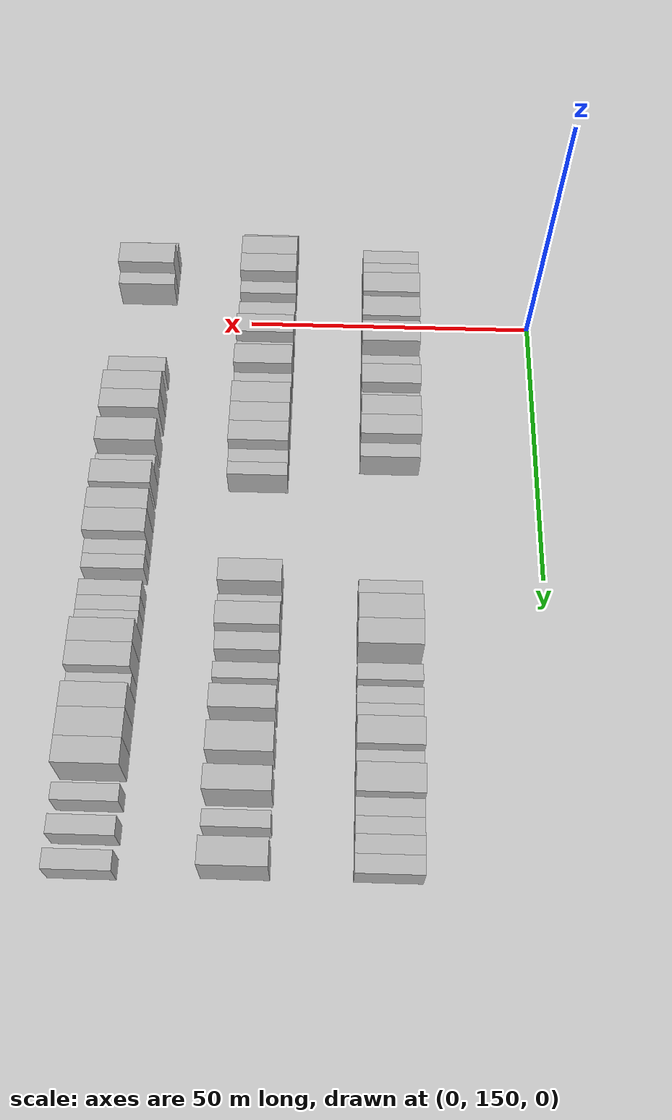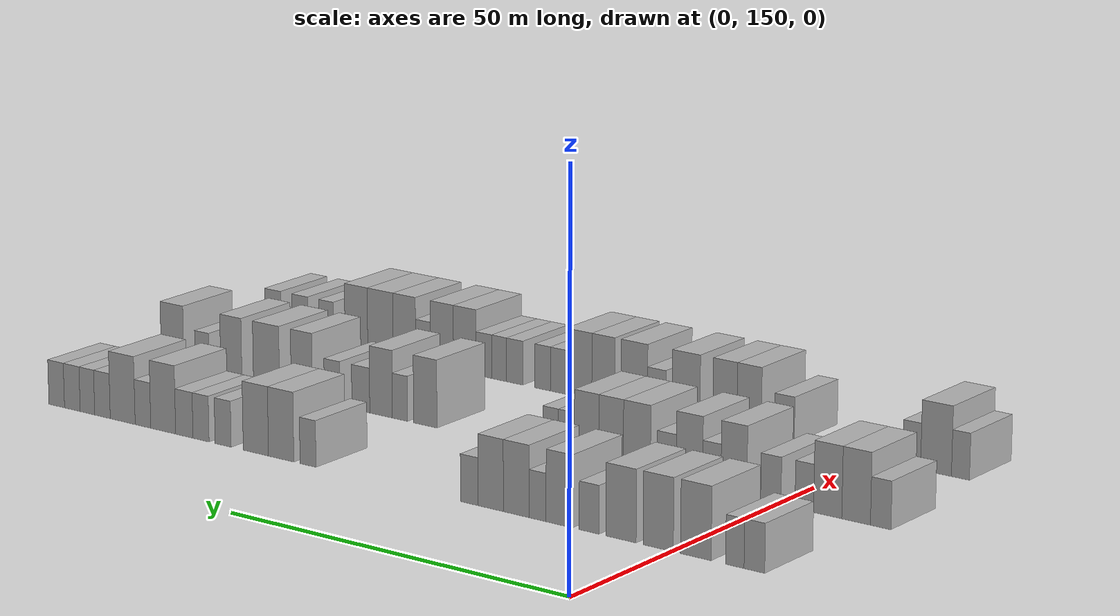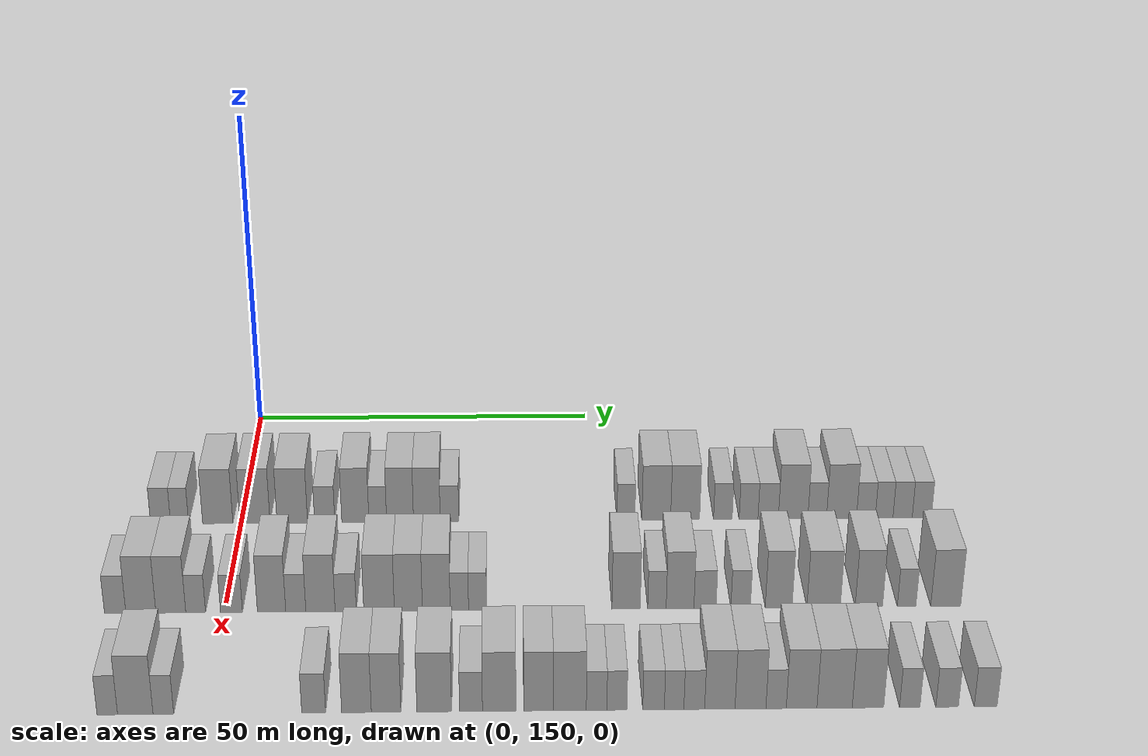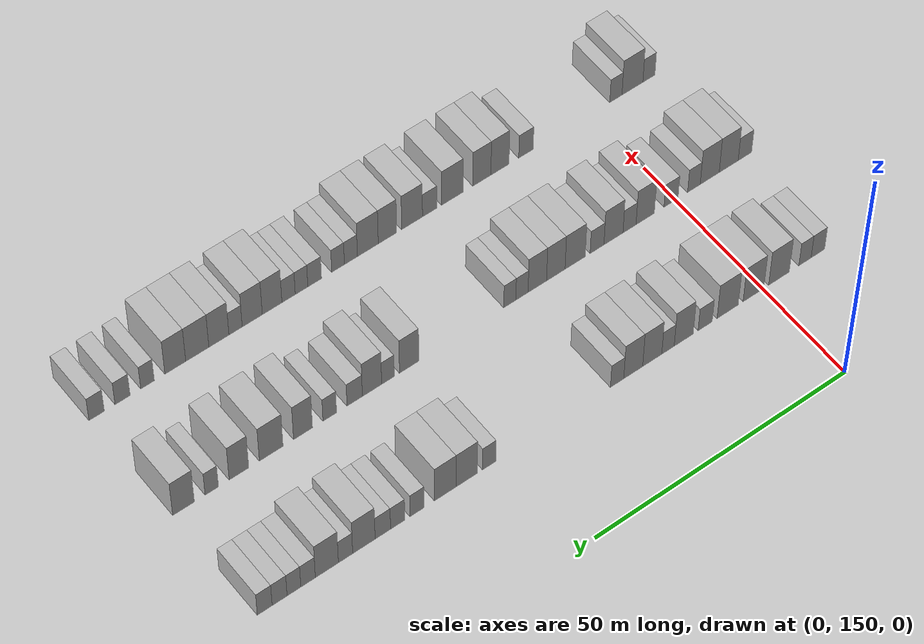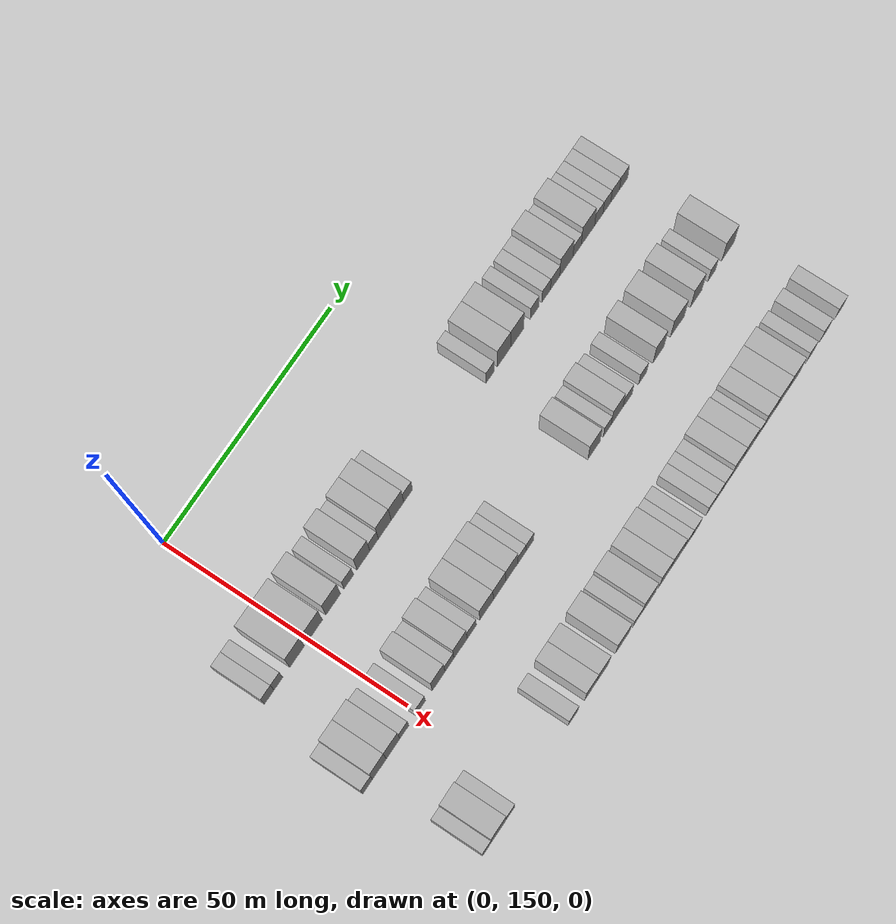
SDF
<sdf version="1.6">
 <world name="default">
  <model name="building_100">
   <static>1</static>
   <pose>25.0000 138.5593 0 0.000000 0.000000 0.000000</pose>
   <link name="link">
    <pose>0 0 3.00 0 0 0</pose>
    <collision name="collision"><geometry><box><size>10.0000 2.8324 6.0000</size></box></geometry></collision>
    <visual name="visual">
     <cast_shadows>0</cast_shadows>
     <geometry><box><size>10.0000 2.8324 6.0000</size></box></geometry>
     <material>
      <script>
       <uri>model://HANNAS_wall/materials/scripts</uri>
       <uri>model://HANNAS_wall/materials/textures</uri>
       <name>vrc/HANNAS_wall</name>
      </script>
     </material>
    </visual>
   </link>
  </model>
  <model name="building_101">
   <static>1</static>
   <pose>25.0000 141.2569 0 0.000000 0.000000 0.000000</pose>
   <link name="link">
    <pose>0 0 3.00 0 0 0</pose>
    <collision name="collision"><geometry><box><size>10.0000 2.5628 6.0000</size></box></geometry></collision>
    <visual name="visual">
     <cast_shadows>0</cast_shadows>
     <geometry><box><size>10.0000 2.5628 6.0000</size></box></geometry>
     <material>
      <script>
       <uri>model://HANNAS_wall/materials/scripts</uri>
       <uri>model://HANNAS_wall/materials/textures</uri>
       <name>vrc/HANNAS_wall</name>
      </script>
     </material>
    </visual>
   </link>
  </model>
  <model name="building_102">
   <static>1</static>
   <pose>25.0000 146.6880 0 0.000000 0.000000 0.000000</pose>
   <link name="link">
    <pose>0 0 4.50 0 0 0</pose>
    <collision name="collision"><geometry><box><size>10.0000 4.2995 9.0000</size></box></geometry></collision>
    <visual name="visual">
     <cast_shadows>0</cast_shadows>
     <geometry><box><size>10.0000 4.2995 9.0000</size></box></geometry>
     <material>
      <script>
       <uri>model://HANNAS_wall/materials/scripts</uri>
       <uri>model://HANNAS_wall/materials/textures</uri>
       <name>vrc/HANNAS_wall</name>
      </script>
     </material>
    </visual>
   </link>
  </model>
  <model name="building_103">
   <static>1</static>
   <pose>25.0000 151.9792 0 0.000000 0.000000 0.000000</pose>
   <link name="link">
    <pose>0 0 4.50 0 0 0</pose>
    <collision name="collision"><geometry><box><size>10.0000 4.2827 9.0000</size></box></geometry></collision>
    <visual name="visual">
     <cast_shadows>0</cast_shadows>
     <geometry><box><size>10.0000 4.2827 9.0000</size></box></geometry>
     <material>
      <script>
       <uri>model://HANNAS_wall/materials/scripts</uri>
       <uri>model://HANNAS_wall/materials/textures</uri>
       <name>vrc/HANNAS_wall</name>
      </script>
     </material>
    </visual>
   </link>
  </model>
  <model name="building_104">
   <static>1</static>
   <pose>25.0000 157.2899 0 0.000000 0.000000 0.000000</pose>
   <link name="link">
    <pose>0 0 4.50 0 0 0</pose>
    <collision name="collision"><geometry><box><size>10.0000 4.3387 9.0000</size></box></geometry></collision>
    <visual name="visual">
     <cast_shadows>0</cast_shadows>
     <geometry><box><size>10.0000 4.3387 9.0000</size></box></geometry>
     <material>
      <script>
       <uri>model://HANNAS_wall/materials/scripts</uri>
       <uri>model://HANNAS_wall/materials/textures</uri>
       <name>vrc/HANNAS_wall</name>
      </script>
     </material>
    </visual>
   </link>
  </model>
  <model name="building_105">
   <static>1</static>
   <pose>25.0000 161.8982 0 0.000000 0.000000 0.000000</pose>
   <link name="link">
    <pose>0 0 3.00 0 0 0</pose>
    <collision name="collision"><geometry><box><size>10.0000 2.8780 6.0000</size></box></geometry></collision>
    <visual name="visual">
     <cast_shadows>0</cast_shadows>
     <geometry><box><size>10.0000 2.8780 6.0000</size></box></geometry>
     <material>
      <script>
       <uri>model://HANNAS_wall/materials/scripts</uri>
       <uri>model://HANNAS_wall/materials/textures</uri>
       <name>vrc/HANNAS_wall</name>
      </script>
     </material>
    </visual>
   </link>
  </model>
  <model name="building_106">
   <static>1</static>
   <pose>25.0000 166.2672 0 0.000000 0.000000 0.000000</pose>
   <link name="link">
    <pose>0 0 4.50 0 0 0</pose>
    <collision name="collision"><geometry><box><size>10.0000 3.8599 9.0000</size></box></geometry></collision>
    <visual name="visual">
     <cast_shadows>0</cast_shadows>
     <geometry><box><size>10.0000 3.8599 9.0000</size></box></geometry>
     <material>
      <script>
       <uri>model://HANNAS_wall/materials/scripts</uri>
       <uri>model://HANNAS_wall/materials/textures</uri>
       <name>vrc/HANNAS_wall</name>
      </script>
     </material>
    </visual>
   </link>
  </model>
  <model name="building_107">
   <static>1</static>
   <pose>25.0000 169.4553 0 0.000000 0.000000 0.000000</pose>
   <link name="link">
    <pose>0 0 3.00 0 0 0</pose>
    <collision name="collision"><geometry><box><size>10.0000 2.5162 6.0000</size></box></geometry></collision>
    <visual name="visual">
     <cast_shadows>0</cast_shadows>
     <geometry><box><size>10.0000 2.5162 6.0000</size></box></geometry>
     <material>
      <script>
       <uri>model://HANNAS_wall/materials/scripts</uri>
       <uri>model://HANNAS_wall/materials/textures</uri>
       <name>vrc/HANNAS_wall</name>
      </script>
     </material>
    </visual>
   </link>
  </model>
  <model name="building_108">
   <static>1</static>
   <pose>25.0000 172.6331 0 0.000000 0.000000 0.000000</pose>
   <link name="link">
    <pose>0 0 4.50 0 0 0</pose>
    <collision name="collision"><geometry><box><size>10.0000 3.8395 9.0000</size></box></geometry></collision>
    <visual name="visual">
     <cast_shadows>0</cast_shadows>
     <geometry><box><size>10.0000 3.8395 9.0000</size></box></geometry>
     <material>
      <script>
       <uri>model://HANNAS_wall/materials/scripts</uri>
       <uri>model://HANNAS_wall/materials/textures</uri>
       <name>vrc/HANNAS_wall</name>
      </script>
     </material>
    </visual>
   </link>
  </model>
  <model name="building_109">
   <static>1</static>
   <pose>25.0000 176.4520 0 0.000000 0.000000 0.000000</pose>
   <link name="link">
    <pose>0 0 4.50 0 0 0</pose>
    <collision name="collision"><geometry><box><size>10.0000 3.7984 9.0000</size></box></geometry></collision>
    <visual name="visual">
     <cast_shadows>0</cast_shadows>
     <geometry><box><size>10.0000 3.7984 9.0000</size></box></geometry>
     <material>
      <script>
       <uri>model://HANNAS_wall/materials/scripts</uri>
       <uri>model://HANNAS_wall/materials/textures</uri>
       <name>vrc/HANNAS_wall</name>
      </script>
     </material>
    </visual>
   </link>
  </model>
  <model name="building_110">
   <static>1</static>
   <pose>25.0000 179.6811 0 0.000000 0.000000 0.000000</pose>
   <link name="link">
    <pose>0 0 3.00 0 0 0</pose>
    <collision name="collision"><geometry><box><size>10.0000 2.6598 6.0000</size></box></geometry></collision>
    <visual name="visual">
     <cast_shadows>0</cast_shadows>
     <geometry><box><size>10.0000 2.6598 6.0000</size></box></geometry>
     <material>
      <script>
       <uri>model://HANNAS_wall/materials/scripts</uri>
       <uri>model://HANNAS_wall/materials/textures</uri>
       <name>vrc/HANNAS_wall</name>
      </script>
     </material>
    </visual>
   </link>
  </model>
  <model name="building_111">
   <static>1</static>
   <pose>25.0000 204.8555 0 0.000000 0.000000 0.000000</pose>
   <link name="link">
    <pose>0 0 3.00 0 0 0</pose>
    <collision name="collision"><geometry><box><size>10.0000 2.5630 6.0000</size></box></geometry></collision>
    <visual name="visual">
     <cast_shadows>0</cast_shadows>
     <geometry><box><size>10.0000 2.5630 6.0000</size></box></geometry>
     <material>
      <script>
       <uri>model://HANNAS_wall/materials/scripts</uri>
       <uri>model://HANNAS_wall/materials/textures</uri>
       <name>vrc/HANNAS_wall</name>
      </script>
     </material>
    </visual>
   </link>
  </model>
  <model name="building_112">
   <static>1</static>
   <pose>25.0000 209.1923 0 0.000000 0.000000 0.000000</pose>
   <link name="link">
    <pose>0 0 4.50 0 0 0</pose>
    <collision name="collision"><geometry><box><size>10.0000 4.1105 9.0000</size></box></geometry></collision>
    <visual name="visual">
     <cast_shadows>0</cast_shadows>
     <geometry><box><size>10.0000 4.1105 9.0000</size></box></geometry>
     <material>
      <script>
       <uri>model://HANNAS_wall/materials/scripts</uri>
       <uri>model://HANNAS_wall/materials/textures</uri>
       <name>vrc/HANNAS_wall</name>
      </script>
     </material>
    </visual>
   </link>
  </model>
  <model name="building_113">
   <static>1</static>
   <pose>25.0000 213.3170 0 0.000000 0.000000 0.000000</pose>
   <link name="link">
    <pose>0 0 4.50 0 0 0</pose>
    <collision name="collision"><geometry><box><size>10.0000 4.1390 9.0000</size></box></geometry></collision>
    <visual name="visual">
     <cast_shadows>0</cast_shadows>
     <geometry><box><size>10.0000 4.1390 9.0000</size></box></geometry>
     <material>
      <script>
       <uri>model://HANNAS_wall/materials/scripts</uri>
       <uri>model://HANNAS_wall/materials/textures</uri>
       <name>vrc/HANNAS_wall</name>
      </script>
     </material>
    </visual>
   </link>
  </model>
  <model name="building_114">
   <static>1</static>
   <pose>25.0000 218.7199 0 0.000000 0.000000 0.000000</pose>
   <link name="link">
    <pose>0 0 3.00 0 0 0</pose>
    <collision name="collision"><geometry><box><size>10.0000 2.6667 6.0000</size></box></geometry></collision>
    <visual name="visual">
     <cast_shadows>0</cast_shadows>
     <geometry><box><size>10.0000 2.6667 6.0000</size></box></geometry>
     <material>
      <script>
       <uri>model://HANNAS_wall/materials/scripts</uri>
       <uri>model://HANNAS_wall/materials/textures</uri>
       <name>vrc/HANNAS_wall</name>
      </script>
     </material>
    </visual>
   </link>
  </model>
  <model name="building_115">
   <static>1</static>
   <pose>25.0000 222.4004 0 0.000000 0.000000 0.000000</pose>
   <link name="link">
    <pose>0 0 3.00 0 0 0</pose>
    <collision name="collision"><geometry><box><size>10.0000 2.6942 6.0000</size></box></geometry></collision>
    <visual name="visual">
     <cast_shadows>0</cast_shadows>
     <geometry><box><size>10.0000 2.6942 6.0000</size></box></geometry>
     <material>
      <script>
       <uri>model://HANNAS_wall/materials/scripts</uri>
       <uri>model://HANNAS_wall/materials/textures</uri>
       <name>vrc/HANNAS_wall</name>
      </script>
     </material>
    </visual>
   </link>
  </model>
  <model name="building_116">
   <static>1</static>
   <pose>25.0000 225.2044 0 0.000000 0.000000 0.000000</pose>
   <link name="link">
    <pose>0 0 3.00 0 0 0</pose>
    <collision name="collision"><geometry><box><size>10.0000 2.9139 6.0000</size></box></geometry></collision>
    <visual name="visual">
     <cast_shadows>0</cast_shadows>
     <geometry><box><size>10.0000 2.9139 6.0000</size></box></geometry>
     <material>
      <script>
       <uri>model://HANNAS_wall/materials/scripts</uri>
       <uri>model://HANNAS_wall/materials/textures</uri>
       <name>vrc/HANNAS_wall</name>
      </script>
     </material>
    </visual>
   </link>
  </model>
  <model name="building_117">
   <static>1</static>
   <pose>25.0000 228.7733 0 0.000000 0.000000 0.000000</pose>
   <link name="link">
    <pose>0 0 4.50 0 0 0</pose>
    <collision name="collision"><geometry><box><size>10.0000 4.2240 9.0000</size></box></geometry></collision>
    <visual name="visual">
     <cast_shadows>0</cast_shadows>
     <geometry><box><size>10.0000 4.2240 9.0000</size></box></geometry>
     <material>
      <script>
       <uri>model://HANNAS_wall/materials/scripts</uri>
       <uri>model://HANNAS_wall/materials/textures</uri>
       <name>vrc/HANNAS_wall</name>
      </script>
     </material>
    </visual>
   </link>
  </model>
  <model name="building_118">
   <static>1</static>
   <pose>25.0000 232.2210 0 0.000000 0.000000 0.000000</pose>
   <link name="link">
    <pose>0 0 3.00 0 0 0</pose>
    <collision name="collision"><geometry><box><size>10.0000 2.6713 6.0000</size></box></geometry></collision>
    <visual name="visual">
     <cast_shadows>0</cast_shadows>
     <geometry><box><size>10.0000 2.6713 6.0000</size></box></geometry>
     <material>
      <script>
       <uri>model://HANNAS_wall/materials/scripts</uri>
       <uri>model://HANNAS_wall/materials/textures</uri>
       <name>vrc/HANNAS_wall</name>
      </script>
     </material>
    </visual>
   </link>
  </model>
  <model name="building_119">
   <static>1</static>
   <pose>25.0000 235.7053 0 0.000000 0.000000 0.000000</pose>
   <link name="link">
    <pose>0 0 4.50 0 0 0</pose>
    <collision name="collision"><geometry><box><size>10.0000 4.2974 9.0000</size></box></geometry></collision>
    <visual name="visual">
     <cast_shadows>0</cast_shadows>
     <geometry><box><size>10.0000 4.2974 9.0000</size></box></geometry>
     <material>
      <script>
       <uri>model://HANNAS_wall/materials/scripts</uri>
       <uri>model://HANNAS_wall/materials/textures</uri>
       <name>vrc/HANNAS_wall</name>
      </script>
     </material>
    </visual>
   </link>
  </model>
  <model name="building_120">
   <static>1</static>
   <pose>25.0000 239.2014 0 0.000000 0.000000 0.000000</pose>
   <link name="link">
    <pose>0 0 3.00 0 0 0</pose>
    <collision name="collision"><geometry><box><size>10.0000 2.6949 6.0000</size></box></geometry></collision>
    <visual name="visual">
     <cast_shadows>0</cast_shadows>
     <geometry><box><size>10.0000 2.6949 6.0000</size></box></geometry>
     <material>
      <script>
       <uri>model://HANNAS_wall/materials/scripts</uri>
       <uri>model://HANNAS_wall/materials/textures</uri>
       <name>vrc/HANNAS_wall</name>
      </script>
     </material>
    </visual>
   </link>
  </model>
  <model name="building_121">
   <static>1</static>
   <pose>25.0000 241.8188 0 0.000000 0.000000 0.000000</pose>
   <link name="link">
    <pose>0 0 3.00 0 0 0</pose>
    <collision name="collision"><geometry><box><size>10.0000 2.5398 6.0000</size></box></geometry></collision>
    <visual name="visual">
     <cast_shadows>0</cast_shadows>
     <geometry><box><size>10.0000 2.5398 6.0000</size></box></geometry>
     <material>
      <script>
       <uri>model://HANNAS_wall/materials/scripts</uri>
       <uri>model://HANNAS_wall/materials/textures</uri>
       <name>vrc/HANNAS_wall</name>
      </script>
     </material>
    </visual>
   </link>
  </model>
  <model name="building_122">
   <static>1</static>
   <pose>25.0000 244.4660 0 0.000000 0.000000 0.000000</pose>
   <link name="link">
    <pose>0 0 3.00 0 0 0</pose>
    <collision name="collision"><geometry><box><size>10.0000 2.7547 6.0000</size></box></geometry></collision>
    <visual name="visual">
     <cast_shadows>0</cast_shadows>
     <geometry><box><size>10.0000 2.7547 6.0000</size></box></geometry>
     <material>
      <script>
       <uri>model://HANNAS_wall/materials/scripts</uri>
       <uri>model://HANNAS_wall/materials/textures</uri>
       <name>vrc/HANNAS_wall</name>
      </script>
     </material>
    </visual>
   </link>
  </model>
  <model name="building_123">
   <static>1</static>
   <pose>25.0000 247.2127 0 0.000000 0.000000 0.000000</pose>
   <link name="link">
    <pose>0 0 3.00 0 0 0</pose>
    <collision name="collision"><geometry><box><size>10.0000 2.7388 6.0000</size></box></geometry></collision>
    <visual name="visual">
     <cast_shadows>0</cast_shadows>
     <geometry><box><size>10.0000 2.7388 6.0000</size></box></geometry>
     <material>
      <script>
       <uri>model://HANNAS_wall/materials/scripts</uri>
       <uri>model://HANNAS_wall/materials/textures</uri>
       <name>vrc/HANNAS_wall</name>
      </script>
     </material>
    </visual>
   </link>
  </model>
  <model name="building_222">
   <static>1</static>
   <pose>47.0000 135.4198 0 0.000000 0.000000 0.000000</pose>
   <link name="link">
    <pose>0 0 3.00 0 0 0</pose>
    <collision name="collision"><geometry><box><size>10.0000 2.8456 6.0000</size></box></geometry></collision>
    <visual name="visual">
     <cast_shadows>0</cast_shadows>
     <geometry><box><size>10.0000 2.8456 6.0000</size></box></geometry>
     <material>
      <script>
       <uri>model://HANNAS_wall/materials/scripts</uri>
       <uri>model://HANNAS_wall/materials/textures</uri>
       <name>vrc/HANNAS_wall</name>
      </script>
     </material>
    </visual>
   </link>
  </model>
  <model name="building_223">
   <static>1</static>
   <pose>47.0000 138.8496 0 0.000000 0.000000 0.000000</pose>
   <link name="link">
    <pose>0 0 4.50 0 0 0</pose>
    <collision name="collision"><geometry><box><size>10.0000 4.0140 9.0000</size></box></geometry></collision>
    <visual name="visual">
     <cast_shadows>0</cast_shadows>
     <geometry><box><size>10.0000 4.0140 9.0000</size></box></geometry>
     <material>
      <script>
       <uri>model://HANNAS_wall/materials/scripts</uri>
       <uri>model://HANNAS_wall/materials/textures</uri>
       <name>vrc/HANNAS_wall</name>
      </script>
     </material>
    </visual>
   </link>
  </model>
  <model name="building_224">
   <static>1</static>
   <pose>47.0000 142.8489 0 0.000000 0.000000 0.000000</pose>
   <link name="link">
    <pose>0 0 4.50 0 0 0</pose>
    <collision name="collision"><geometry><box><size>10.0000 3.9846 9.0000</size></box></geometry></collision>
    <visual name="visual">
     <cast_shadows>0</cast_shadows>
     <geometry><box><size>10.0000 3.9846 9.0000</size></box></geometry>
     <material>
      <script>
       <uri>model://HANNAS_wall/materials/scripts</uri>
       <uri>model://HANNAS_wall/materials/textures</uri>
       <name>vrc/HANNAS_wall</name>
      </script>
     </material>
    </visual>
   </link>
  </model>
  <model name="building_225">
   <static>1</static>
   <pose>47.0000 146.1616 0 0.000000 0.000000 0.000000</pose>
   <link name="link">
    <pose>0 0 3.00 0 0 0</pose>
    <collision name="collision"><geometry><box><size>10.0000 2.6408 6.0000</size></box></geometry></collision>
    <visual name="visual">
     <cast_shadows>0</cast_shadows>
     <geometry><box><size>10.0000 2.6408 6.0000</size></box></geometry>
     <material>
      <script>
       <uri>model://HANNAS_wall/materials/scripts</uri>
       <uri>model://HANNAS_wall/materials/textures</uri>
       <name>vrc/HANNAS_wall</name>
      </script>
     </material>
    </visual>
   </link>
  </model>
  <model name="building_226">
   <static>1</static>
   <pose>47.0000 150.9477 0 0.000000 0.000000 0.000000</pose>
   <link name="link">
    <pose>0 0 3.00 0 0 0</pose>
    <collision name="collision"><geometry><box><size>10.0000 2.9312 6.0000</size></box></geometry></collision>
    <visual name="visual">
     <cast_shadows>0</cast_shadows>
     <geometry><box><size>10.0000 2.9312 6.0000</size></box></geometry>
     <material>
      <script>
       <uri>model://HANNAS_wall/materials/scripts</uri>
       <uri>model://HANNAS_wall/materials/textures</uri>
       <name>vrc/HANNAS_wall</name>
      </script>
     </material>
    </visual>
   </link>
  </model>
  <model name="building_227">
   <static>1</static>
   <pose>47.0000 156.3072 0 0.000000 0.000000 0.000000</pose>
   <link name="link">
    <pose>0 0 4.50 0 0 0</pose>
    <collision name="collision"><geometry><box><size>10.0000 3.7879 9.0000</size></box></geometry></collision>
    <visual name="visual">
     <cast_shadows>0</cast_shadows>
     <geometry><box><size>10.0000 3.7879 9.0000</size></box></geometry>
     <material>
      <script>
       <uri>model://HANNAS_wall/materials/scripts</uri>
       <uri>model://HANNAS_wall/materials/textures</uri>
       <name>vrc/HANNAS_wall</name>
      </script>
     </material>
    </visual>
   </link>
  </model>
  <model name="building_228">
   <static>1</static>
   <pose>47.0000 159.5427 0 0.000000 0.000000 0.000000</pose>
   <link name="link">
    <pose>0 0 3.00 0 0 0</pose>
    <collision name="collision"><geometry><box><size>10.0000 2.6829 6.0000</size></box></geometry></collision>
    <visual name="visual">
     <cast_shadows>0</cast_shadows>
     <geometry><box><size>10.0000 2.6829 6.0000</size></box></geometry>
     <material>
      <script>
       <uri>model://HANNAS_wall/materials/scripts</uri>
       <uri>model://HANNAS_wall/materials/textures</uri>
       <name>vrc/HANNAS_wall</name>
      </script>
     </material>
    </visual>
   </link>
  </model>
  <model name="building_229">
   <static>1</static>
   <pose>47.0000 162.8414 0 0.000000 0.000000 0.000000</pose>
   <link name="link">
    <pose>0 0 4.50 0 0 0</pose>
    <collision name="collision"><geometry><box><size>10.0000 3.9146 9.0000</size></box></geometry></collision>
    <visual name="visual">
     <cast_shadows>0</cast_shadows>
     <geometry><box><size>10.0000 3.9146 9.0000</size></box></geometry>
     <material>
      <script>
       <uri>model://HANNAS_wall/materials/scripts</uri>
       <uri>model://HANNAS_wall/materials/textures</uri>
       <name>vrc/HANNAS_wall</name>
      </script>
     </material>
    </visual>
   </link>
  </model>
  <model name="building_230">
   <static>1</static>
   <pose>47.0000 166.2160 0 0.000000 0.000000 0.000000</pose>
   <link name="link">
    <pose>0 0 3.00 0 0 0</pose>
    <collision name="collision"><geometry><box><size>10.0000 2.8346 6.0000</size></box></geometry></collision>
    <visual name="visual">
     <cast_shadows>0</cast_shadows>
     <geometry><box><size>10.0000 2.8346 6.0000</size></box></geometry>
     <material>
      <script>
       <uri>model://HANNAS_wall/materials/scripts</uri>
       <uri>model://HANNAS_wall/materials/textures</uri>
       <name>vrc/HANNAS_wall</name>
      </script>
     </material>
    </visual>
   </link>
  </model>
  <model name="building_231">
   <static>1</static>
   <pose>47.0000 170.6762 0 0.000000 0.000000 0.000000</pose>
   <link name="link">
    <pose>0 0 4.50 0 0 0</pose>
    <collision name="collision"><geometry><box><size>10.0000 4.0859 9.0000</size></box></geometry></collision>
    <visual name="visual">
     <cast_shadows>0</cast_shadows>
     <geometry><box><size>10.0000 4.0859 9.0000</size></box></geometry>
     <material>
      <script>
       <uri>model://HANNAS_wall/materials/scripts</uri>
       <uri>model://HANNAS_wall/materials/textures</uri>
       <name>vrc/HANNAS_wall</name>
      </script>
     </material>
    </visual>
   </link>
  </model>
  <model name="building_232">
   <static>1</static>
   <pose>47.0000 174.5950 0 0.000000 0.000000 0.000000</pose>
   <link name="link">
    <pose>0 0 4.50 0 0 0</pose>
    <collision name="collision"><geometry><box><size>10.0000 3.7517 9.0000</size></box></geometry></collision>
    <visual name="visual">
     <cast_shadows>0</cast_shadows>
     <geometry><box><size>10.0000 3.7517 9.0000</size></box></geometry>
     <material>
      <script>
       <uri>model://HANNAS_wall/materials/scripts</uri>
       <uri>model://HANNAS_wall/materials/textures</uri>
       <name>vrc/HANNAS_wall</name>
      </script>
     </material>
    </visual>
   </link>
  </model>
  <model name="building_233">
   <static>1</static>
   <pose>47.0000 178.3323 0 0.000000 0.000000 0.000000</pose>
   <link name="link">
    <pose>0 0 4.50 0 0 0</pose>
    <collision name="collision"><geometry><box><size>10.0000 3.7228 9.0000</size></box></geometry></collision>
    <visual name="visual">
     <cast_shadows>0</cast_shadows>
     <geometry><box><size>10.0000 3.7228 9.0000</size></box></geometry>
     <material>
      <script>
       <uri>model://HANNAS_wall/materials/scripts</uri>
       <uri>model://HANNAS_wall/materials/textures</uri>
       <name>vrc/HANNAS_wall</name>
      </script>
     </material>
    </visual>
   </link>
  </model>
  <model name="building_234">
   <static>1</static>
   <pose>47.0000 181.4216 0 0.000000 0.000000 0.000000</pose>
   <link name="link">
    <pose>0 0 3.00 0 0 0</pose>
    <collision name="collision"><geometry><box><size>10.0000 2.4558 6.0000</size></box></geometry></collision>
    <visual name="visual">
     <cast_shadows>0</cast_shadows>
     <geometry><box><size>10.0000 2.4558 6.0000</size></box></geometry>
     <material>
      <script>
       <uri>model://HANNAS_wall/materials/scripts</uri>
       <uri>model://HANNAS_wall/materials/textures</uri>
       <name>vrc/HANNAS_wall</name>
      </script>
     </material>
    </visual>
   </link>
  </model>
  <model name="building_235">
   <static>1</static>
   <pose>47.0000 183.8625 0 0.000000 0.000000 0.000000</pose>
   <link name="link">
    <pose>0 0 3.00 0 0 0</pose>
    <collision name="collision"><geometry><box><size>10.0000 2.4261 6.0000</size></box></geometry></collision>
    <visual name="visual">
     <cast_shadows>0</cast_shadows>
     <geometry><box><size>10.0000 2.4261 6.0000</size></box></geometry>
     <material>
      <script>
       <uri>model://HANNAS_wall/materials/scripts</uri>
       <uri>model://HANNAS_wall/materials/textures</uri>
       <name>vrc/HANNAS_wall</name>
      </script>
     </material>
    </visual>
   </link>
  </model>
  <model name="building_236">
   <static>1</static>
   <pose>47.0000 203.7697 0 0.000000 0.000000 0.000000</pose>
   <link name="link">
    <pose>0 0 4.50 0 0 0</pose>
    <collision name="collision"><geometry><box><size>10.0000 3.7961 9.0000</size></box></geometry></collision>
    <visual name="visual">
     <cast_shadows>0</cast_shadows>
     <geometry><box><size>10.0000 3.7961 9.0000</size></box></geometry>
     <material>
      <script>
       <uri>model://HANNAS_wall/materials/scripts</uri>
       <uri>model://HANNAS_wall/materials/textures</uri>
       <name>vrc/HANNAS_wall</name>
      </script>
     </material>
    </visual>
   </link>
  </model>
  <model name="building_237">
   <static>1</static>
   <pose>47.0000 207.9058 0 0.000000 0.000000 0.000000</pose>
   <link name="link">
    <pose>0 0 3.00 0 0 0</pose>
    <collision name="collision"><geometry><box><size>10.0000 2.4761 6.0000</size></box></geometry></collision>
    <visual name="visual">
     <cast_shadows>0</cast_shadows>
     <geometry><box><size>10.0000 2.4761 6.0000</size></box></geometry>
     <material>
      <script>
       <uri>model://HANNAS_wall/materials/scripts</uri>
       <uri>model://HANNAS_wall/materials/textures</uri>
       <name>vrc/HANNAS_wall</name>
      </script>
     </material>
    </visual>
   </link>
  </model>
  <model name="building_238">
   <static>1</static>
   <pose>47.0000 211.0096 0 0.000000 0.000000 0.000000</pose>
   <link name="link">
    <pose>0 0 4.50 0 0 0</pose>
    <collision name="collision"><geometry><box><size>10.0000 3.7315 9.0000</size></box></geometry></collision>
    <visual name="visual">
     <cast_shadows>0</cast_shadows>
     <geometry><box><size>10.0000 3.7315 9.0000</size></box></geometry>
     <material>
      <script>
       <uri>model://HANNAS_wall/materials/scripts</uri>
       <uri>model://HANNAS_wall/materials/textures</uri>
       <name>vrc/HANNAS_wall</name>
      </script>
     </material>
    </visual>
   </link>
  </model>
  <model name="building_239">
   <static>1</static>
   <pose>47.0000 214.3592 0 0.000000 0.000000 0.000000</pose>
   <link name="link">
    <pose>0 0 3.00 0 0 0</pose>
    <collision name="collision"><geometry><box><size>10.0000 2.9677 6.0000</size></box></geometry></collision>
    <visual name="visual">
     <cast_shadows>0</cast_shadows>
     <geometry><box><size>10.0000 2.9677 6.0000</size></box></geometry>
     <material>
      <script>
       <uri>model://HANNAS_wall/materials/scripts</uri>
       <uri>model://HANNAS_wall/materials/textures</uri>
       <name>vrc/HANNAS_wall</name>
      </script>
     </material>
    </visual>
   </link>
  </model>
  <model name="building_240">
   <static>1</static>
   <pose>47.0000 219.1511 0 0.000000 0.000000 0.000000</pose>
   <link name="link">
    <pose>0 0 3.00 0 0 0</pose>
    <collision name="collision"><geometry><box><size>10.0000 2.6161 6.0000</size></box></geometry></collision>
    <visual name="visual">
     <cast_shadows>0</cast_shadows>
     <geometry><box><size>10.0000 2.6161 6.0000</size></box></geometry>
     <material>
      <script>
       <uri>model://HANNAS_wall/materials/scripts</uri>
       <uri>model://HANNAS_wall/materials/textures</uri>
       <name>vrc/HANNAS_wall</name>
      </script>
     </material>
    </visual>
   </link>
  </model>
  <model name="building_241">
   <static>1</static>
   <pose>47.0000 224.2629 0 0.000000 0.000000 0.000000</pose>
   <link name="link">
    <pose>0 0 4.50 0 0 0</pose>
    <collision name="collision"><geometry><box><size>10.0000 3.6075 9.0000</size></box></geometry></collision>
    <visual name="visual">
     <cast_shadows>0</cast_shadows>
     <geometry><box><size>10.0000 3.6075 9.0000</size></box></geometry>
     <material>
      <script>
       <uri>model://HANNAS_wall/materials/scripts</uri>
       <uri>model://HANNAS_wall/materials/textures</uri>
       <name>vrc/HANNAS_wall</name>
      </script>
     </material>
    </visual>
   </link>
  </model>
  <model name="building_242">
   <static>1</static>
   <pose>47.0000 230.3086 0 0.000000 0.000000 0.000000</pose>
   <link name="link">
    <pose>0 0 4.50 0 0 0</pose>
    <collision name="collision"><geometry><box><size>10.0000 4.4839 9.0000</size></box></geometry></collision>
    <visual name="visual">
     <cast_shadows>0</cast_shadows>
     <geometry><box><size>10.0000 4.4839 9.0000</size></box></geometry>
     <material>
      <script>
       <uri>model://HANNAS_wall/materials/scripts</uri>
       <uri>model://HANNAS_wall/materials/textures</uri>
       <name>vrc/HANNAS_wall</name>
      </script>
     </material>
    </visual>
   </link>
  </model>
  <model name="building_243">
   <static>1</static>
   <pose>47.0000 236.3908 0 0.000000 0.000000 0.000000</pose>
   <link name="link">
    <pose>0 0 4.50 0 0 0</pose>
    <collision name="collision"><geometry><box><size>10.0000 3.6805 9.0000</size></box></geometry></collision>
    <visual name="visual">
     <cast_shadows>0</cast_shadows>
     <geometry><box><size>10.0000 3.6805 9.0000</size></box></geometry>
     <material>
      <script>
       <uri>model://HANNAS_wall/materials/scripts</uri>
       <uri>model://HANNAS_wall/materials/textures</uri>
       <name>vrc/HANNAS_wall</name>
      </script>
     </material>
    </visual>
   </link>
  </model>
  <model name="building_244">
   <static>1</static>
   <pose>47.0000 241.4790 0 0.000000 0.000000 0.000000</pose>
   <link name="link">
    <pose>0 0 3.00 0 0 0</pose>
    <collision name="collision"><geometry><box><size>10.0000 2.4959 6.0000</size></box></geometry></collision>
    <visual name="visual">
     <cast_shadows>0</cast_shadows>
     <geometry><box><size>10.0000 2.4959 6.0000</size></box></geometry>
     <material>
      <script>
       <uri>model://HANNAS_wall/materials/scripts</uri>
       <uri>model://HANNAS_wall/materials/textures</uri>
       <name>vrc/HANNAS_wall</name>
      </script>
     </material>
    </visual>
   </link>
  </model>
  <model name="building_245">
   <static>1</static>
   <pose>47.0000 246.7386 0 0.000000 0.000000 0.000000</pose>
   <link name="link">
    <pose>0 0 4.50 0 0 0</pose>
    <collision name="collision"><geometry><box><size>10.0000 4.0232 9.0000</size></box></geometry></collision>
    <visual name="visual">
     <cast_shadows>0</cast_shadows>
     <geometry><box><size>10.0000 4.0232 9.0000</size></box></geometry>
     <material>
      <script>
       <uri>model://HANNAS_wall/materials/scripts</uri>
       <uri>model://HANNAS_wall/materials/textures</uri>
       <name>vrc/HANNAS_wall</name>
      </script>
     </material>
    </visual>
   </link>
  </model>
  <model name="building_343">
   <static>1</static>
   <pose>69.0000 137.7665 0 0.000000 0.000000 0.000000</pose>
   <link name="link">
    <pose>0 0 3.00 0 0 0</pose>
    <collision name="collision"><geometry><box><size>10.0000 2.5623 6.0000</size></box></geometry></collision>
    <visual name="visual">
     <cast_shadows>0</cast_shadows>
     <geometry><box><size>10.0000 2.5623 6.0000</size></box></geometry>
     <material>
      <script>
       <uri>model://HANNAS_wall/materials/scripts</uri>
       <uri>model://HANNAS_wall/materials/textures</uri>
       <name>vrc/HANNAS_wall</name>
      </script>
     </material>
    </visual>
   </link>
  </model>
  <model name="building_344">
   <static>1</static>
   <pose>69.0000 141.2595 0 0.000000 0.000000 0.000000</pose>
   <link name="link">
    <pose>0 0 4.50 0 0 0</pose>
    <collision name="collision"><geometry><box><size>10.0000 4.4238 9.0000</size></box></geometry></collision>
    <visual name="visual">
     <cast_shadows>0</cast_shadows>
     <geometry><box><size>10.0000 4.4238 9.0000</size></box></geometry>
     <material>
      <script>
       <uri>model://HANNAS_wall/materials/scripts</uri>
       <uri>model://HANNAS_wall/materials/textures</uri>
       <name>vrc/HANNAS_wall</name>
      </script>
     </material>
    </visual>
   </link>
  </model>
  <model name="building_345">
   <static>1</static>
   <pose>69.0000 144.7610 0 0.000000 0.000000 0.000000</pose>
   <link name="link">
    <pose>0 0 3.00 0 0 0</pose>
    <collision name="collision"><geometry><box><size>10.0000 2.5791 6.0000</size></box></geometry></collision>
    <visual name="visual">
     <cast_shadows>0</cast_shadows>
     <geometry><box><size>10.0000 2.5791 6.0000</size></box></geometry>
     <material>
      <script>
       <uri>model://HANNAS_wall/materials/scripts</uri>
       <uri>model://HANNAS_wall/materials/textures</uri>
       <name>vrc/HANNAS_wall</name>
      </script>
     </material>
    </visual>
   </link>
  </model>
  <model name="building_346">
   <static>1</static>
   <pose>69.0000 163.5363 0 0.000000 0.000000 0.000000</pose>
   <link name="link">
    <pose>0 0 3.00 0 0 0</pose>
    <collision name="collision"><geometry><box><size>10.0000 2.9905 6.0000</size></box></geometry></collision>
    <visual name="visual">
     <cast_shadows>0</cast_shadows>
     <geometry><box><size>10.0000 2.9905 6.0000</size></box></geometry>
     <material>
      <script>
       <uri>model://HANNAS_wall/materials/scripts</uri>
       <uri>model://HANNAS_wall/materials/textures</uri>
       <name>vrc/HANNAS_wall</name>
      </script>
     </material>
    </visual>
   </link>
  </model>
  <model name="building_347">
   <static>1</static>
   <pose>69.0000 168.8888 0 0.000000 0.000000 0.000000</pose>
   <link name="link">
    <pose>0 0 4.50 0 0 0</pose>
    <collision name="collision"><geometry><box><size>10.0000 3.7145 9.0000</size></box></geometry></collision>
    <visual name="visual">
     <cast_shadows>0</cast_shadows>
     <geometry><box><size>10.0000 3.7145 9.0000</size></box></geometry>
     <material>
      <script>
       <uri>model://HANNAS_wall/materials/scripts</uri>
       <uri>model://HANNAS_wall/materials/textures</uri>
       <name>vrc/HANNAS_wall</name>
      </script>
     </material>
    </visual>
   </link>
  </model>
  <model name="building_348">
   <static>1</static>
   <pose>69.0000 172.5946 0 0.000000 0.000000 0.000000</pose>
   <link name="link">
    <pose>0 0 4.50 0 0 0</pose>
    <collision name="collision"><geometry><box><size>10.0000 3.6971 9.0000</size></box></geometry></collision>
    <visual name="visual">
     <cast_shadows>0</cast_shadows>
     <geometry><box><size>10.0000 3.6971 9.0000</size></box></geometry>
     <material>
      <script>
       <uri>model://HANNAS_wall/materials/scripts</uri>
       <uri>model://HANNAS_wall/materials/textures</uri>
       <name>vrc/HANNAS_wall</name>
      </script>
     </material>
    </visual>
   </link>
  </model>
  <model name="building_349">
   <static>1</static>
   <pose>69.0000 178.6142 0 0.000000 0.000000 0.000000</pose>
   <link name="link">
    <pose>0 0 4.50 0 0 0</pose>
    <collision name="collision"><geometry><box><size>10.0000 4.3421 9.0000</size></box></geometry></collision>
    <visual name="visual">
     <cast_shadows>0</cast_shadows>
     <geometry><box><size>10.0000 4.3421 9.0000</size></box></geometry>
     <material>
      <script>
       <uri>model://HANNAS_wall/materials/scripts</uri>
       <uri>model://HANNAS_wall/materials/textures</uri>
       <name>vrc/HANNAS_wall</name>
      </script>
     </material>
    </visual>
   </link>
  </model>
  <model name="building_350">
   <static>1</static>
   <pose>69.0000 183.2184 0 0.000000 0.000000 0.000000</pose>
   <link name="link">
    <pose>0 0 3.00 0 0 0</pose>
    <collision name="collision"><geometry><box><size>10.0000 2.8664 6.0000</size></box></geometry></collision>
    <visual name="visual">
     <cast_shadows>0</cast_shadows>
     <geometry><box><size>10.0000 2.8664 6.0000</size></box></geometry>
     <material>
      <script>
       <uri>model://HANNAS_wall/materials/scripts</uri>
       <uri>model://HANNAS_wall/materials/textures</uri>
       <name>vrc/HANNAS_wall</name>
      </script>
     </material>
    </visual>
   </link>
  </model>
  <model name="building_351">
   <static>1</static>
   <pose>69.0000 186.7493 0 0.000000 0.000000 0.000000</pose>
   <link name="link">
    <pose>0 0 4.50 0 0 0</pose>
    <collision name="collision"><geometry><box><size>10.0000 4.1953 9.0000</size></box></geometry></collision>
    <visual name="visual">
     <cast_shadows>0</cast_shadows>
     <geometry><box><size>10.0000 4.1953 9.0000</size></box></geometry>
     <material>
      <script>
       <uri>model://HANNAS_wall/materials/scripts</uri>
       <uri>model://HANNAS_wall/materials/textures</uri>
       <name>vrc/HANNAS_wall</name>
      </script>
     </material>
    </visual>
   </link>
  </model>
  <model name="building_352">
   <static>1</static>
   <pose>69.0000 191.6844 0 0.000000 0.000000 0.000000</pose>
   <link name="link">
    <pose>0 0 4.50 0 0 0</pose>
    <collision name="collision"><geometry><box><size>10.0000 3.6749 9.0000</size></box></geometry></collision>
    <visual name="visual">
     <cast_shadows>0</cast_shadows>
     <geometry><box><size>10.0000 3.6749 9.0000</size></box></geometry>
     <material>
      <script>
       <uri>model://HANNAS_wall/materials/scripts</uri>
       <uri>model://HANNAS_wall/materials/textures</uri>
       <name>vrc/HANNAS_wall</name>
      </script>
     </material>
    </visual>
   </link>
  </model>
  <model name="building_353">
   <static>1</static>
   <pose>69.0000 195.5930 0 0.000000 0.000000 0.000000</pose>
   <link name="link">
    <pose>0 0 4.50 0 0 0</pose>
    <collision name="collision"><geometry><box><size>10.0000 4.1422 9.0000</size></box></geometry></collision>
    <visual name="visual">
     <cast_shadows>0</cast_shadows>
     <geometry><box><size>10.0000 4.1422 9.0000</size></box></geometry>
     <material>
      <script>
       <uri>model://HANNAS_wall/materials/scripts</uri>
       <uri>model://HANNAS_wall/materials/textures</uri>
       <name>vrc/HANNAS_wall</name>
      </script>
     </material>
    </visual>
   </link>
  </model>
  <model name="building_354">
   <static>1</static>
   <pose>69.0000 198.9541 0 0.000000 0.000000 0.000000</pose>
   <link name="link">
    <pose>0 0 3.00 0 0 0</pose>
    <collision name="collision"><geometry><box><size>10.0000 2.5799 6.0000</size></box></geometry></collision>
    <visual name="visual">
     <cast_shadows>0</cast_shadows>
     <geometry><box><size>10.0000 2.5799 6.0000</size></box></geometry>
     <material>
      <script>
       <uri>model://HANNAS_wall/materials/scripts</uri>
       <uri>model://HANNAS_wall/materials/textures</uri>
       <name>vrc/HANNAS_wall</name>
      </script>
     </material>
    </visual>
   </link>
  </model>
  <model name="building_355">
   <static>1</static>
   <pose>69.0000 201.5012 0 0.000000 0.000000 0.000000</pose>
   <link name="link">
    <pose>0 0 3.00 0 0 0</pose>
    <collision name="collision"><geometry><box><size>10.0000 2.5143 6.0000</size></box></geometry></collision>
    <visual name="visual">
     <cast_shadows>0</cast_shadows>
     <geometry><box><size>10.0000 2.5143 6.0000</size></box></geometry>
     <material>
      <script>
       <uri>model://HANNAS_wall/materials/scripts</uri>
       <uri>model://HANNAS_wall/materials/textures</uri>
       <name>vrc/HANNAS_wall</name>
      </script>
     </material>
    </visual>
   </link>
  </model>
  <model name="building_356">
   <static>1</static>
   <pose>69.0000 206.1053 0 0.000000 0.000000 0.000000</pose>
   <link name="link">
    <pose>0 0 3.00 0 0 0</pose>
    <collision name="collision"><geometry><box><size>10.0000 2.6940 6.0000</size></box></geometry></collision>
    <visual name="visual">
     <cast_shadows>0</cast_shadows>
     <geometry><box><size>10.0000 2.6940 6.0000</size></box></geometry>
     <material>
      <script>
       <uri>model://HANNAS_wall/materials/scripts</uri>
       <uri>model://HANNAS_wall/materials/textures</uri>
       <name>vrc/HANNAS_wall</name>
      </script>
     </material>
    </visual>
   </link>
  </model>
  <model name="building_357">
   <static>1</static>
   <pose>69.0000 208.6805 0 0.000000 0.000000 0.000000</pose>
   <link name="link">
    <pose>0 0 3.00 0 0 0</pose>
    <collision name="collision"><geometry><box><size>10.0000 2.4564 6.0000</size></box></geometry></collision>
    <visual name="visual">
     <cast_shadows>0</cast_shadows>
     <geometry><box><size>10.0000 2.4564 6.0000</size></box></geometry>
     <material>
      <script>
       <uri>model://HANNAS_wall/materials/scripts</uri>
       <uri>model://HANNAS_wall/materials/textures</uri>
       <name>vrc/HANNAS_wall</name>
      </script>
     </material>
    </visual>
   </link>
  </model>
  <model name="building_358">
   <static>1</static>
   <pose>69.0000 211.2138 0 0.000000 0.000000 0.000000</pose>
   <link name="link">
    <pose>0 0 3.00 0 0 0</pose>
    <collision name="collision"><geometry><box><size>10.0000 2.6101 6.0000</size></box></geometry></collision>
    <visual name="visual">
     <cast_shadows>0</cast_shadows>
     <geometry><box><size>10.0000 2.6101 6.0000</size></box></geometry>
     <material>
      <script>
       <uri>model://HANNAS_wall/materials/scripts</uri>
       <uri>model://HANNAS_wall/materials/textures</uri>
       <name>vrc/HANNAS_wall</name>
      </script>
     </material>
    </visual>
   </link>
  </model>
  <model name="building_359">
   <static>1</static>
   <pose>69.0000 214.4256 0 0.000000 0.000000 0.000000</pose>
   <link name="link">
    <pose>0 0 4.50 0 0 0</pose>
    <collision name="collision"><geometry><box><size>10.0000 3.8135 9.0000</size></box></geometry></collision>
    <visual name="visual">
     <cast_shadows>0</cast_shadows>
     <geometry><box><size>10.0000 3.8135 9.0000</size></box></geometry>
     <material>
      <script>
       <uri>model://HANNAS_wall/materials/scripts</uri>
       <uri>model://HANNAS_wall/materials/textures</uri>
       <name>vrc/HANNAS_wall</name>
      </script>
     </material>
    </visual>
   </link>
  </model>
  <model name="building_360">
   <static>1</static>
   <pose>69.0000 218.2742 0 0.000000 0.000000 0.000000</pose>
   <link name="link">
    <pose>0 0 4.50 0 0 0</pose>
    <collision name="collision"><geometry><box><size>10.0000 3.8838 9.0000</size></box></geometry></collision>
    <visual name="visual">
     <cast_shadows>0</cast_shadows>
     <geometry><box><size>10.0000 3.8838 9.0000</size></box></geometry>
     <material>
      <script>
       <uri>model://HANNAS_wall/materials/scripts</uri>
       <uri>model://HANNAS_wall/materials/textures</uri>
       <name>vrc/HANNAS_wall</name>
      </script>
     </material>
    </visual>
   </link>
  </model>
  <model name="building_361">
   <static>1</static>
   <pose>69.0000 221.4957 0 0.000000 0.000000 0.000000</pose>
   <link name="link">
    <pose>0 0 3.00 0 0 0</pose>
    <collision name="collision"><geometry><box><size>10.0000 2.5591 6.0000</size></box></geometry></collision>
    <visual name="visual">
     <cast_shadows>0</cast_shadows>
     <geometry><box><size>10.0000 2.5591 6.0000</size></box></geometry>
     <material>
      <script>
       <uri>model://HANNAS_wall/materials/scripts</uri>
       <uri>model://HANNAS_wall/materials/textures</uri>
       <name>vrc/HANNAS_wall</name>
      </script>
     </material>
    </visual>
   </link>
  </model>
  <model name="building_362">
   <static>1</static>
   <pose>69.0000 224.7043 0 0.000000 0.000000 0.000000</pose>
   <link name="link">
    <pose>0 0 4.50 0 0 0</pose>
    <collision name="collision"><geometry><box><size>10.0000 3.8582 9.0000</size></box></geometry></collision>
    <visual name="visual">
     <cast_shadows>0</cast_shadows>
     <geometry><box><size>10.0000 3.8582 9.0000</size></box></geometry>
     <material>
      <script>
       <uri>model://HANNAS_wall/materials/scripts</uri>
       <uri>model://HANNAS_wall/materials/textures</uri>
       <name>vrc/HANNAS_wall</name>
      </script>
     </material>
    </visual>
   </link>
  </model>
  <model name="building_363">
   <static>1</static>
   <pose>69.0000 228.8485 0 0.000000 0.000000 0.000000</pose>
   <link name="link">
    <pose>0 0 4.50 0 0 0</pose>
    <collision name="collision"><geometry><box><size>10.0000 4.4301 9.0000</size></box></geometry></collision>
    <visual name="visual">
     <cast_shadows>0</cast_shadows>
     <geometry><box><size>10.0000 4.4301 9.0000</size></box></geometry>
     <material>
      <script>
       <uri>model://HANNAS_wall/materials/scripts</uri>
       <uri>model://HANNAS_wall/materials/textures</uri>
       <name>vrc/HANNAS_wall</name>
      </script>
     </material>
    </visual>
   </link>
  </model>
  <model name="building_364">
   <static>1</static>
   <pose>69.0000 233.0470 0 0.000000 0.000000 0.000000</pose>
   <link name="link">
    <pose>0 0 4.50 0 0 0</pose>
    <collision name="collision"><geometry><box><size>10.0000 3.9670 9.0000</size></box></geometry></collision>
    <visual name="visual">
     <cast_shadows>0</cast_shadows>
     <geometry><box><size>10.0000 3.9670 9.0000</size></box></geometry>
     <material>
      <script>
       <uri>model://HANNAS_wall/materials/scripts</uri>
       <uri>model://HANNAS_wall/materials/textures</uri>
       <name>vrc/HANNAS_wall</name>
      </script>
     </material>
    </visual>
   </link>
  </model>
  <model name="building_365">
   <static>1</static>
   <pose>69.0000 238.3156 0 0.000000 0.000000 0.000000</pose>
   <link name="link">
    <pose>0 0 3.00 0 0 0</pose>
    <collision name="collision"><geometry><box><size>10.0000 2.5702 6.0000</size></box></geometry></collision>
    <visual name="visual">
     <cast_shadows>0</cast_shadows>
     <geometry><box><size>10.0000 2.5702 6.0000</size></box></geometry>
     <material>
      <script>
       <uri>model://HANNAS_wall/materials/scripts</uri>
       <uri>model://HANNAS_wall/materials/textures</uri>
       <name>vrc/HANNAS_wall</name>
      </script>
     </material>
    </visual>
   </link>
  </model>
  <model name="building_366">
   <static>1</static>
   <pose>69.0000 243.0179 0 0.000000 0.000000 0.000000</pose>
   <link name="link">
    <pose>0 0 3.00 0 0 0</pose>
    <collision name="collision"><geometry><box><size>10.0000 2.8345 6.0000</size></box></geometry></collision>
    <visual name="visual">
     <cast_shadows>0</cast_shadows>
     <geometry><box><size>10.0000 2.8345 6.0000</size></box></geometry>
     <material>
      <script>
       <uri>model://HANNAS_wall/materials/scripts</uri>
       <uri>model://HANNAS_wall/materials/textures</uri>
       <name>vrc/HANNAS_wall</name>
      </script>
     </material>
    </visual>
   </link>
  </model>
  <model name="building_367">
   <static>1</static>
   <pose>69.0000 247.8751 0 0.000000 0.000000 0.000000</pose>
   <link name="link">
    <pose>0 0 3.00 0 0 0</pose>
    <collision name="collision"><geometry><box><size>10.0000 2.8798 6.0000</size></box></geometry></collision>
    <visual name="visual">
     <cast_shadows>0</cast_shadows>
     <geometry><box><size>10.0000 2.8798 6.0000</size></box></geometry>
     <material>
      <script>
       <uri>model://HANNAS_wall/materials/scripts</uri>
       <uri>model://HANNAS_wall/materials/textures</uri>
       <name>vrc/HANNAS_wall</name>
      </script>
     </material>
    </visual>
   </link>
  </model>
 </world>
</sdf>
